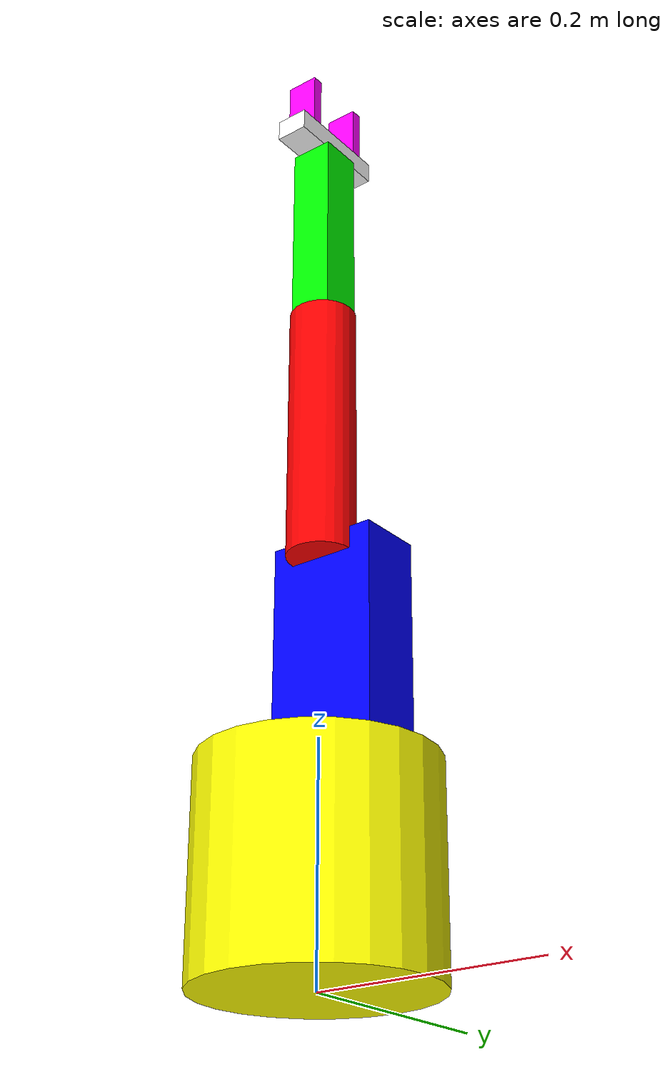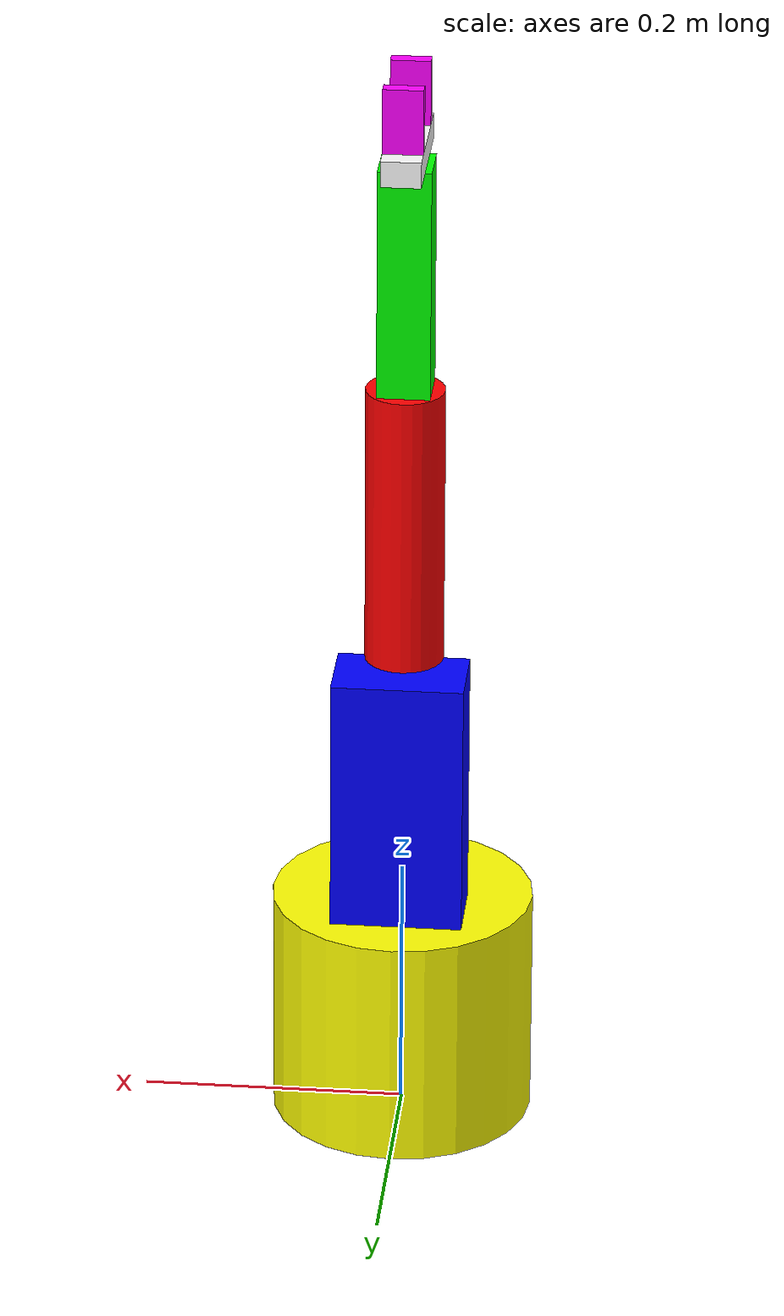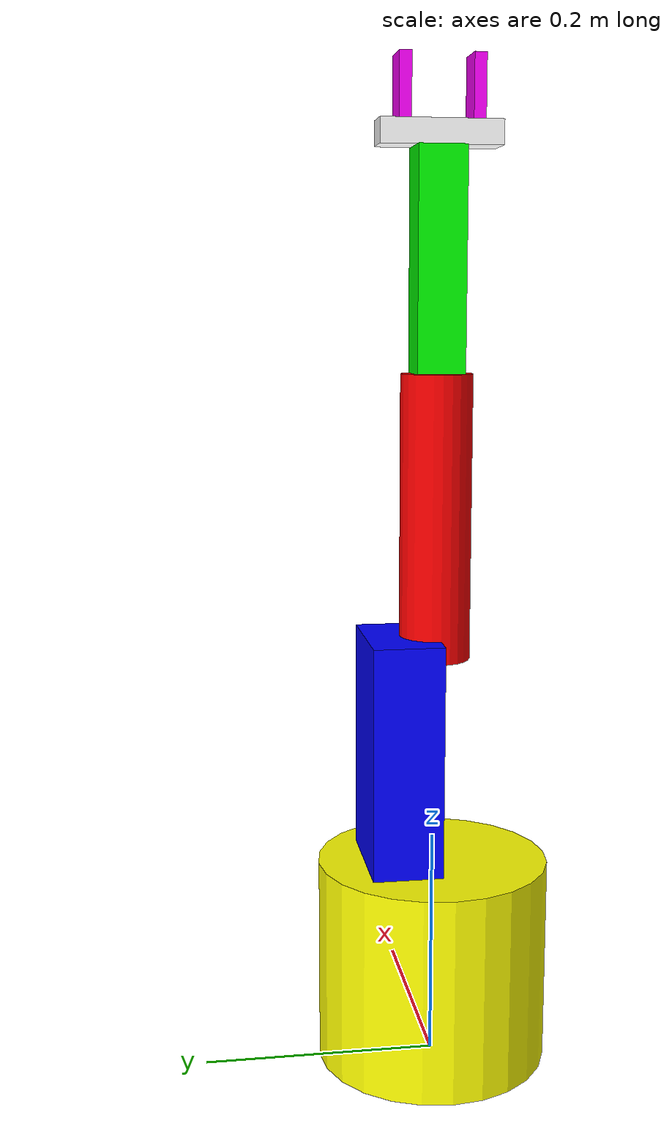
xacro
<?xml version="1.0"?>
<robot name="myarm" xmlns:xacro="http://www.ros.org/wiki/xacro">

    <!-- include other file -->
    <xacro:include filename="$(find myrobot_description)/urdf/materials.xacro" />

    <!-- Constants -->
    <xacro:property name="M_PI" value="3.1415926535897931" />
    <xacro:property name="M_PI_2" value="1.570796327" />
    <xacro:property name="arm_friction"       value="50.0" />
    <xacro:property name="arm_damping"        value="1.0" />

    <!-- Macro for inertia matrix -->
    <!-- m:mass r:radius l:length -->
    <xacro:macro name="cylinder_inertial_matrix" params="m r l">
        <inertial>
            <mass value="${m}" />
            <inertia ixx="${m*(3*r*r+l*l)/12}" ixy = "0" ixz = "0"
                iyy="${m*(3*r*r+l*l)/12}" iyz = "0"
                izz="${m*r*r/2}" />
        </inertial>
    </xacro:macro>
    <!-- m:mass l:length  w:width h:height-->
    <xacro:macro name="box_inertial_matrix" params="m l w h">
        <inertial>
            <mass value="${m}" />
            <inertia ixx="${m*(h*h+l*l)/12}" ixy = "0" ixz = "0"
                iyy="${m*(w*w+l*l)/12}" iyz = "0"
                izz="${m*(w*w+h*h)/12}" />
        </inertial>
    </xacro:macro>

    <link name="arm_base_link">
      <visual>
        <origin rpy="0 0 0" xyz="0 0 0.09"/>
        <geometry>
          <cylinder length="0.18" radius="0.1"/>
        </geometry>
        <material name="yellow" />
      </visual>
      <collision>
        <origin rpy="0 0 0" xyz="0 0 0.09"/>
        <geometry>
          <cylinder length="0.18" radius="0.1"/>
        </geometry>
      </collision>
      <cylinder_inertial_matrix m="1.0" r="0.1" l="0.18"/>
    </link>

    <joint name="arm_joint1" type="revolute">
      <parent link="arm_base_link"/>
      <child link="arm_link1"/>
      <origin rpy="0 0 0" xyz="0 0 0.18"/>
      <axis xyz="0 0 1" />
      <limit effort="300" velocity="0.6" lower="-2.96" upper="2.96"/>
      <dynamics friction="${arm_friction}" damping="${arm_damping}"/>
    </joint>

    <link name="arm_link1">
      <visual>
        <geometry>
          <box size="0.1 0.06 0.2"/>
        </geometry>
        <origin rpy="0 0 0" xyz="0 0.03 0.1"/>
        <material name="blue"/>
      </visual>
      <collision>
        <geometry>
          <box size="0.1 0.06 0.2"/>
        </geometry>
        <origin rpy="0 0 0" xyz="0 0.03 0.1"/>
      </collision>
      <box_inertial_matrix m="1.0" l="0.1" w="0.06" h="0.2"/>

    </link>
    <joint name="arm_joint2" type="revolute">
      <parent link="arm_link1"/>
      <child link="arm_link2"/>
      <origin rpy="0 0 0" xyz="0 0 0.18"/>
      <axis xyz="0 1 0" />
      <limit effort="300" velocity="0.6" lower="-${M_PI/3*2}" upper="${M_PI/3*2}"/>
      <dynamics friction="${arm_friction}" damping="${arm_damping}"/>
    </joint>

    <link name="arm_link2">
      <visual>
        <geometry>
          <cylinder length="0.24" radius="0.03"/>
        </geometry>
        <origin rpy="0 0 0" xyz="0 0 0.12"/>
        <material name="red" />
      </visual>
      <collision>
        <geometry>
          <cylinder length="0.24" radius="0.03"/>
        </geometry>
        <origin rpy="0 0 0" xyz="0 0 0.12"/>
      </collision>
      <cylinder_inertial_matrix m="1.0" r="0.03" l="0.24"/>
    </link>

    <joint name="arm_joint3" type="revolute">
      <parent link="arm_link2"/>
      <child link="arm_link3"/>
      <origin rpy="0 0 0" xyz="0 0 0.24"/>
      <axis xyz="0 1 0" />
      <limit effort="300" velocity="0.6" lower="-${M_PI/3*2}" upper="${M_PI/3*2}"/>
      <dynamics friction="${arm_friction}" damping="${arm_damping}"/>
    </joint>

    <link name="arm_link3">
      <visual>
        <geometry>
          <box size="0.04 0.04 0.18"/>
        </geometry>
        <origin rpy="0 0 0" xyz="0 0 0.09"/>
        <material name="green" />
      </visual>
      <collision>
        <geometry>
          <box size="0.04 0.04 0.18"/>
        </geometry>
        <origin rpy="0 0 0" xyz="0 0 0.09"/>
      </collision>
      <box_inertial_matrix m="1.0" l="0.04" w="0.04" h="0.18"/>
    </link>
    <joint name="gripper_base_joint" type="fixed">
      <parent link="arm_link3"/>
      <child link="gripper_base_link"/>
      <origin rpy="0 0 0" xyz="0 0 0.18"/>
    </joint>

    <link name="gripper_base_link">
      <visual>
        <geometry>
          <box size="0.03 0.1 0.02"/>
        </geometry>
        <origin rpy="0 0 0" xyz="0 0 0.01"/>
        <material name="white" />
      </visual>
      <collision>
        <geometry>
          <box size="0.03 0.1 0.02"/>
        </geometry>
        <origin rpy="0 0 0" xyz="0 0 0.01"/>
      </collision>
      <box_inertial_matrix m="1.0" l="0.03" w="0.2" h="0.02"/>
    </link>
    <joint name="finger1_joint" type="prismatic">
      <parent link="gripper_base_link"/>
      <child link="finger1_link"/>
      <origin rpy="0 0 0" xyz="0 0.03 0.02"/>
      <axis xyz="0 1 0" />
      <limit effort="300" velocity="0.6" lower="-0.025" upper="0.01"/>
      <dynamics friction="${arm_friction}" damping="${arm_damping}"/>
    </joint>

    <link name="finger1_link">
      <visual>
        <geometry>
          <box size="0.03 0.01 0.05"/>
        </geometry>
        <origin rpy="0 0 0" xyz="0 0 0.025"/>
        <material name="purple" />
      </visual>
      <collision>
        <geometry>
          <box size="0.03 0.01 0.05"/>
        </geometry>
        <origin rpy="0 0 0" xyz="0 0 0.025"/>
      </collision>
      <box_inertial_matrix m="1.0" l="0.03" w="0.01" h="0.05"/>
    </link>

    <joint name="finger2_joint" type="prismatic">
      <parent link="gripper_base_link"/>
      <child link="finger2_link"/>
      <origin rpy="0 0 0" xyz="0 -0.03 0.02"/>
      <axis xyz="0 1 0" />
      <limit effort="300" velocity="0.6" lower="-0.01" upper="0.025"/>
      <dynamics friction="${arm_friction}" damping="${arm_damping}"/>
      <mimic joint="finger1_joint" multiplier="-1"/>
    </joint>

    <link name="finger2_link">
      <visual>
        <geometry>
          <box size="0.03 0.01 0.05"/>
        </geometry>
        <origin rpy="0 0 0" xyz="0 0 0.025"/>
        <material name="purple"/>
      </visual>
      <collision>
        <geometry>
          <box size="0.03 0.01 0.05"/>
        </geometry>
        <origin rpy="0 0 0" xyz="0 0 0.025"/>
      </collision>
      <box_inertial_matrix m="1.0" l="0.03" w="0.01" h="0.05"/>
    </link>
    <joint name="gripper_centor_joint" type="fixed">
      <parent link="gripper_base_link"/>
      <child link="gripper_centor_link"/>
      <origin rpy="0 0 0" xyz="0 0 0.045"/>
    </joint>

    <link name="gripper_centor_link" />
</robot>

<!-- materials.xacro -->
<robot name="material" xmlns:xacro="http://www.ros.org/wiki/xacro">

  <material name="black">
    <color rgba="0.0 0.0 0.0 1.0"/>
  </material>
  <material name="red">
    <color rgba="1.0 0.0 0.0 1.0"/>
  </material>

  <material name="blue">
    <color rgba="0.0 0.0 1.0 1.0"/>
  </material>

  <material name="green">
    <color rgba="0.0 1.0 0.0 1.0"/>
  </material>

  <material name="purple">
    <color rgba="1.0 0 1.0 1.0"/>
  </material>

  <material name="yellow">
    <color rgba="1.0 1.0 0 1.0"/>
  </material>

  <material name="grey">
      <color rgba="0.7 0.7 0.7 1.0"/>
  </material>

  <material name="light_grey">
    <color rgba="0.6 0.6 0.6 1.0"/>
  </material>

  <material name="orange">
    <color rgba="1.0 0.33 0.0 1.0"/>
  </material>

  <material name="white">
    <color rgba="1.0 1.0 1.0 1.0"/>
  </material>

</robot>
